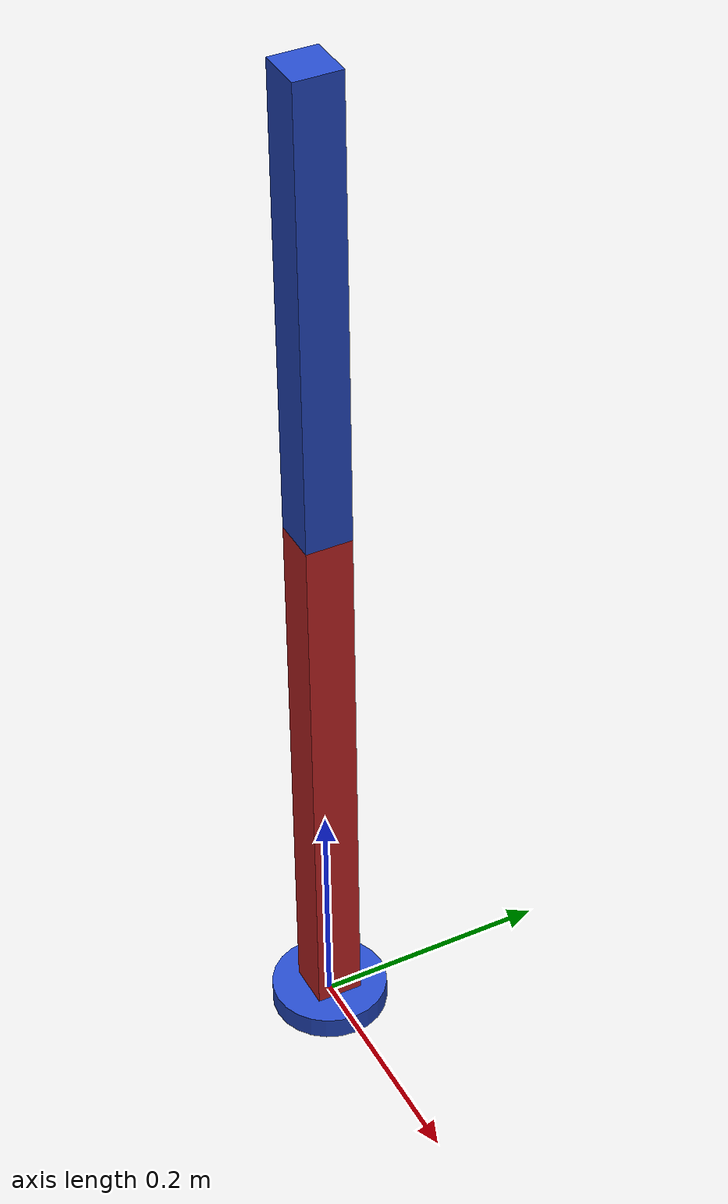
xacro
<?xml version="1.0"?>
<robot xmlns:xacro="http://www.ros.org/wiki/xacro">

    <xacro:property name="arm_base_link_length" value="0.02"/>
    <xacro:property name="arm_base_link_radius" value="0.05"/>

    <xacro:property name="arm_shoulder_link_length" value="0.04"/>
    <xacro:property name="arm_shoulder_link_width" value="0.04"/>
    <xacro:property name="arm_shoulder_link_height" value="0.5"/>

    <xacro:property name="arm_elbow_link_length" value="0.04"/>
    <xacro:property name="arm_elbow_link_width" value="0.04"/>
    <xacro:property name="arm_elbow_link_height" value="0.4"/>

<!--                     LINKS                        -->

    <link name="arm_base_link">
        <visual name="">
            <origin xyz="0.0 0.0 0.0" rpy="0.0 0.0 0.0"/>
            <geometry>
                <cylinder radius="${arm_base_link_radius}" length="${arm_base_link_length}"/>
            </geometry>
            <material name="blue"/>
        </visual>

        <collision>
            <origin xyz="0.0 0.0 0.0" rpy="0.0 0.0 0.0"/>
            <geometry>
                <cylinder radius="${arm_base_link_radius}" length="${arm_base_link_length}"/>
            </geometry>
        </collision>

        <xacro:sphere_inertial mass="1.0" r="${arm_base_link_radius}" o_xyz="0 0 0" o_rpy="0 0 0" />
    </link>

    <link name="arm_shoulder_link">
        <visual name="">
            <origin xyz="0.0 0.0 ${arm_shoulder_link_height / 2.0}" rpy="0.0 0.0 0.0"/>
            <geometry>
                <box size="${arm_shoulder_link_length} ${arm_shoulder_link_width} ${arm_shoulder_link_height}"/>
            </geometry>
            <material name="red"/>
        </visual>

        <collision>
            <origin xyz="0.0 0.0 ${arm_shoulder_link_height / 2.0}" rpy="0.0 0.0 0.0"/>
            <geometry>
                <box size="${arm_shoulder_link_length} ${arm_shoulder_link_width} ${arm_shoulder_link_height}"/>
            </geometry>
        </collision>

        <xacro:box_inertial mass="1.0"
                            l="${arm_shoulder_link_length}"
                            w="${arm_shoulder_link_width}"
                            h="${arm_shoulder_link_height}"
                            o_xyz="0.0 0.0 ${arm_shoulder_link_height / 2.0}"
                            o_rpy="0 0 0" />

    </link>

    <link name="arm_elbow_link">
        <visual name="">
            <origin xyz="0.0 0.0 ${arm_elbow_link_height/2}" rpy="0.0 0.0 0.0"/>
            <geometry>
                <box size="${arm_elbow_link_length} ${arm_elbow_link_width} ${arm_elbow_link_height}"/>
            </geometry>
            <material name="blue"/>
        </visual>

        <collision>
            <origin xyz="0.0 0.0 ${arm_elbow_link_height/2}" rpy="0.0 0.0 0.0"/>
            <geometry>
                <box size="${arm_elbow_link_length} ${arm_elbow_link_width} ${arm_elbow_link_height}"/>
            </geometry>
        </collision>

        <xacro:box_inertial mass="0.5"
                            l="${arm_elbow_link_length}"
                            w="${arm_elbow_link_width}"
                            h="${arm_elbow_link_height}"
                            o_xyz="0.0 0.0 ${arm_elbow_link_height/2}"
                            o_rpy="0 0 0" />
    </link>

<!--                                              JOINTS                                          -->

    <joint name="arm_base_arm_shoulder" type="revolute">
        <origin xyz="0.0 0.0 0.0" rpy="0.0 0.0 0.0"/>
        <parent link="arm_base_link"/>
        <child link="arm_shoulder_link"/>
        <axis xyz="0.0 1.0 0.0"/>
        <limit lower="0.0" upper="${pi / 2.0}" effort="100.0" velocity="1.0"/>
        <dynamics friction="0.3" damping="0.5" />
    </joint>

    <joint name="arm_shoulder_arm_elbow" type="revolute">
        <origin xyz="0.0 0.0 ${arm_shoulder_link_height}" rpy="0.0 0.0 0.0"/>
        <parent link="arm_shoulder_link"/>
        <child link="arm_elbow_link"/>
        <axis xyz="0.0 1.0 0.0"/>
        <limit lower="0.0" upper="${pi / 2.0}" effort="100.0" velocity="1.0"/>
        <dynamics friction="0.3" damping="0.5" />
    </joint>
</robot>
